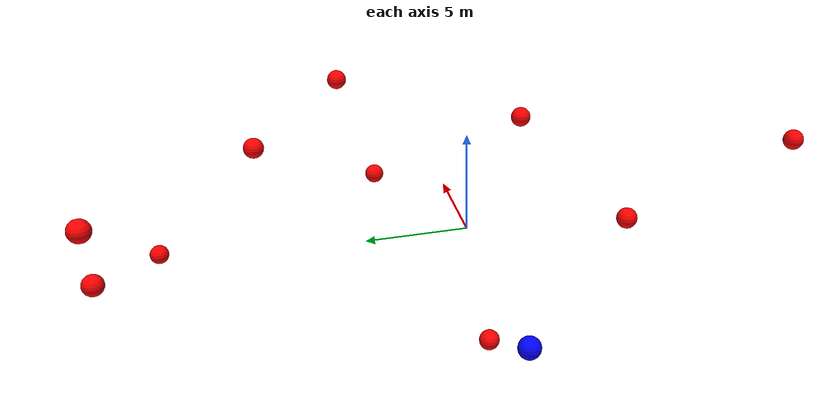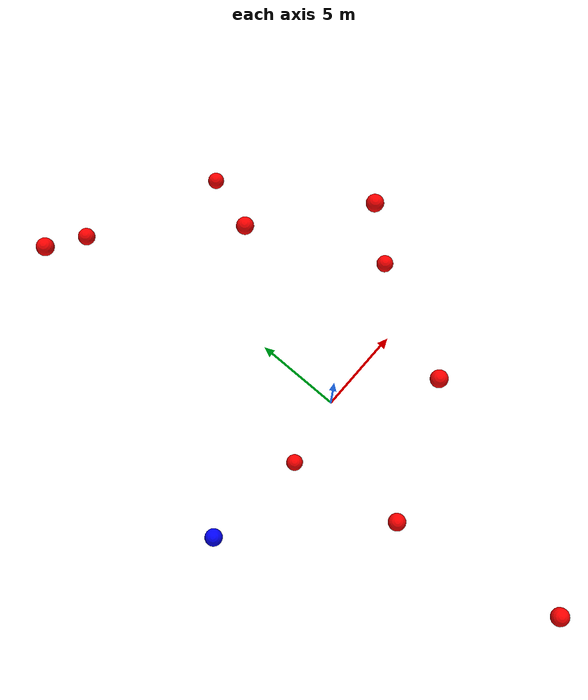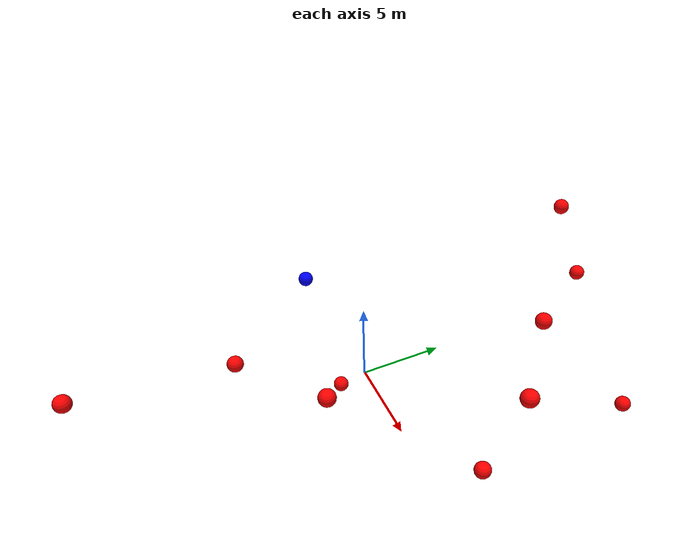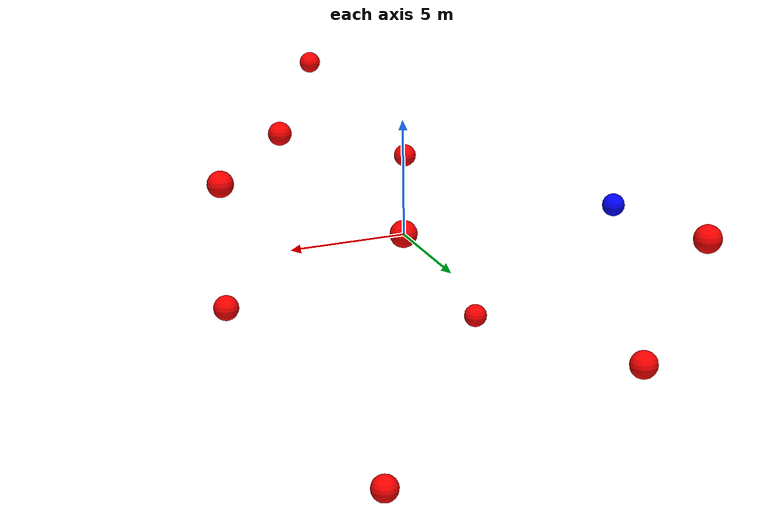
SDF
<?xml version="1.0" ?>
<sdf version="1.8">
    <world name="3d_world">
        <physics name="1ms" type="ode">
            <max_step_size>0.001</max_step_size>
            <real_time_factor>1.0</real_time_factor>
            <real_time_update_rate>1000.0</real_time_update_rate>
        </physics>
        <gravity>0 0 0</gravity>

        <plugin
            filename="gz-sim-physics-system"
            name="gz::sim::v8::systems::Physics">
        </plugin>
        <plugin
            filename="libignition-gazebo-user-commands-system.so"
            name="ignition::gazebo::systems::UserCommands">
        </plugin>
        <plugin
            filename="gz-sim-scene-broadcaster-system"
            name="gz::sim::systems::SceneBroadcaster">
        </plugin>
        <plugin
            filename="gz-sim-sensors-system"
            name="gz::sim::systems::Sensors">
            <render_engine>ogre2</render_engine>
        </plugin>

        <light type="directional" name="sun">
            <cast_shadows>true</cast_shadows>
            <pose>0 0 10 0 0 0</pose>
            <diffuse>0.8 0.8 0.8 1</diffuse>
            <specular>0.2 0.2 0.2 1</specular>
            <attenuation>
                <range>1000</range>
                <constant>0.9</constant>
                <linear>0.01</linear>
                <quadratic>0.001</quadratic>
            </attenuation>
            <direction>-0.5 0.1 -0.9</direction>
        </light>

        <!-- AGENTE -->
        <model name='agente' canonical_link='chassis'>
            <pose relative_to='world'>-10.0 0 0.0 0 0 0</pose>
            <link name='chassis'>
                <pose relative_to='__model__'>0.0 0 0.0 0 0 0</pose>
                <inertial>
                    <mass>1.14395</mass>
                    <inertia>
                        <ixx>0.095329</ixx>
                        <ixy>0</ixy>
                        <ixz>0</ixz>
                        <iyy>0.381317</iyy>
                        <iyz>0</iyz>
                        <izz>0.476646</izz>
                    </inertia>
                </inertial>
                <visual name='visual'>
                    <geometry>
                        <sphere>
                            <radius>0.5</radius>
                        </sphere>
                    </geometry>
                    <material>
                        <ambient>0.0 0.0 1.0 1</ambient>
                        <diffuse>0.0 0.0 1.0 1</diffuse>
                        <specular>0.0 0.0 1.0 1</specular>
                    </material>
                </visual>
                <collision name='collision'>
                    <geometry>
                        <sphere>
                            <radius>0.5</radius>
                        </sphere>
                    </geometry>
                </collision>
                <enable_gravity>false</enable_gravity>
            </link>

            <link name='lidar_link'>
                <pose relative_to='chassis'>0.0 0 0.1 0 0 0</pose>
                <inertial>
                    <mass>0.1</mass>
                    <inertia>
                        <ixx>0.000166667</ixx>
                        <iyy>0.000166667</iyy>
                        <izz>0.000166667</izz>
                    </inertia>
                </inertial>
                <collision name='collision'>
                    <geometry>
                        <cylinder>
                            <radius>0.05</radius>
                            <length>0.1</length>
                        </cylinder>
                    </geometry>
                </collision>
                <visual name='visual'>
                    <geometry>
                        <cylinder>
                            <radius>0.05</radius>
                            <length>0.1</length>
                        </cylinder>
                    </geometry>
                    <material>
                        <ambient>0.0 1.0 0.0 1</ambient>
                        <diffuse>0.0 1.0 0.0 1</diffuse>
                        <specular>0.0 1.0 0.0 1</specular>
                    </material>
                </visual>
                <sensor name="lidar" type="gpu_lidar">
                    <topic>scan</topic>
                    <update_rate>10</update_rate>
                    <lidar>
                        <scan>
                            <horizontal>
                                <samples>5000</samples>
                                <resolution>1</resolution>
                                <min_angle>-3.14159</min_angle>
                                <max_angle>3.14159</max_angle>
                            </horizontal>
                        </scan>
                        <range>
                            <min>0.1</min>
                            <max>10.0</max>
                            <resolution>0.01</resolution>
                        </range>
                    </lidar>
                    <visualize>true</visualize>
                    <always_on>true</always_on>
                    <update_rate>10</update_rate>
                    <pose_frame>lidar</pose_frame>
                </sensor>
                <enable_gravity>false</enable_gravity>
            </link>

            <joint name="lidar_joint" type="fixed">
                <parent>chassis</parent>
                <child>lidar_link</child>
            </joint>

            <plugin
                filename="ignition-gazebo-joint-state-publisher-system"
                name="ignition::gazebo::systems::JointStatePublisher">
            </plugin>
            <plugin
                filename="ignition-gazebo-odometry-publisher-system"
                name="ignition::gazebo::systems::OdometryPublisher">
                <dimensions>3</dimensions>
            </plugin>
            <plugin
                filename="ignition-gazebo-velocity-control-system"
                name="ignition::gazebo::systems::VelocityControl">
                <initial_linear>0.0 0 0</initial_linear>
                <initial_angular>0 0 0.0</initial_angular>
            </plugin>
            <plugin
                filename="libignition-gazebo-pose-publisher-system.so"
                name="ignition::gazebo::systems::PosePublisher">
                <topic>/agente/pose</topic>
                <frame_id>agente</frame_id>
                <update_rate>30</update_rate>
            </plugin>
        </model>

        <!-- OBSTACLE 1 -->
        <model name='obstacle_1' canonical_link='obstacle'>
            <static>false</static>
            <pose relative_to='world'>-2.91 -7.11 1.16 0 0 0</pose>
            <link name='obstacle'>
                <pose relative_to='__model__'>0.0 0 0.0 0 0 0</pose>
                <visual name='visual'>
                    <geometry>
                        <sphere>
                            <radius>0.50</radius>
                        </sphere>
                    </geometry>
                    <material>
                        <ambient>1.0 0.0 0.0 1</ambient>
                        <diffuse>1.0 0.0 0.0 1</diffuse>
                        <specular>1.0 0.0 0.0 1</specular>
                    </material>
                </visual>
                <collision name='collision'>
                    <geometry>
                        <sphere>
                            <radius>0.50</radius>
                        </sphere>
                    </geometry>
                </collision>
                <enable_gravity>false</enable_gravity>
            </link>

            <plugin
                filename="ignition-gazebo-velocity-control-system"
                name="ignition::gazebo::systems::VelocityControl">
                <initial_linear>1.29 1.21 -0.20</initial_linear>
                <initial_angular>0 0 0</initial_angular>
            </plugin>

            <plugin
                filename="ignition-gazebo-odometry-publisher-system"
                name="ignition::gazebo::systems::OdometryPublisher">
                <dimensions>3</dimensions>
            </plugin>
        </model>

        <!-- OBSTACLE 2 -->
        <model name='obstacle_2' canonical_link='obstacle'>
            <static>false</static>
            <pose relative_to='world'>3.87 9.69 3.73 0 0 0</pose>
            <link name='obstacle'>
                <pose relative_to='__model__'>0.0 0 0.0 0 0 0</pose>
                <visual name='visual'>
                    <geometry>
                        <sphere>
                            <radius>0.50</radius>
                        </sphere>
                    </geometry>
                    <material>
                        <ambient>1.0 0.0 0.0 1</ambient>
                        <diffuse>1.0 0.0 0.0 1</diffuse>
                        <specular>1.0 0.0 0.0 1</specular>
                    </material>
                </visual>
                <collision name='collision'>
                    <geometry>
                        <sphere>
                            <radius>0.50</radius>
                        </sphere>
                    </geometry>
                </collision>
                <enable_gravity>false</enable_gravity>
            </link>

            <plugin
                filename="ignition-gazebo-velocity-control-system"
                name="ignition::gazebo::systems::VelocityControl">
                <initial_linear>-1.26 -1.45 -0.56</initial_linear>
                <initial_angular>0 0 0</initial_angular>
            </plugin>

            <plugin
                filename="ignition-gazebo-odometry-publisher-system"
                name="ignition::gazebo::systems::OdometryPublisher">
                <dimensions>3</dimensions>
            </plugin>
        </model>

        <!-- OBSTACLE 3 -->
        <model name='obstacle_3' canonical_link='obstacle'>
            <static>false</static>
            <pose relative_to='world'>-4.37 16.79 4.70 0 0 0</pose>
            <link name='obstacle'>
                <pose relative_to='__model__'>0.0 0 0.0 0 0 0</pose>
                <visual name='visual'>
                    <geometry>
                        <sphere>
                            <radius>0.50</radius>
                        </sphere>
                    </geometry>
                    <material>
                        <ambient>1.0 0.0 0.0 1</ambient>
                        <diffuse>1.0 0.0 0.0 1</diffuse>
                        <specular>1.0 0.0 0.0 1</specular>
                    </material>
                </visual>
                <collision name='collision'>
                    <geometry>
                        <sphere>
                            <radius>0.50</radius>
                        </sphere>
                    </geometry>
                </collision>
                <enable_gravity>false</enable_gravity>
            </link>

            <plugin
                filename="ignition-gazebo-velocity-control-system"
                name="ignition::gazebo::systems::VelocityControl">
                <initial_linear>0.24 -1.91 -0.54</initial_linear>
                <initial_angular>0 0 0</initial_angular>
            </plugin>

            <plugin
                filename="ignition-gazebo-odometry-publisher-system"
                name="ignition::gazebo::systems::OdometryPublisher">
                <dimensions>3</dimensions>
            </plugin>
        </model>

        <!-- OBSTACLE 4 -->
        <model name='obstacle_4' canonical_link='obstacle'>
            <static>false</static>
            <pose relative_to='world'>-1.54 -16.39 3.59 0 0 0</pose>
            <link name='obstacle'>
                <pose relative_to='__model__'>0.0 0 0.0 0 0 0</pose>
                <visual name='visual'>
                    <geometry>
                        <sphere>
                            <radius>0.50</radius>
                        </sphere>
                    </geometry>
                    <material>
                        <ambient>1.0 0.0 0.0 1</ambient>
                        <diffuse>1.0 0.0 0.0 1</diffuse>
                        <specular>1.0 0.0 0.0 1</specular>
                    </material>
                </visual>
                <collision name='collision'>
                    <geometry>
                        <sphere>
                            <radius>0.50</radius>
                        </sphere>
                    </geometry>
                </collision>
                <enable_gravity>false</enable_gravity>
            </link>

            <plugin
                filename="ignition-gazebo-velocity-control-system"
                name="ignition::gazebo::systems::VelocityControl">
                <initial_linear>0.94 1.72 -0.38</initial_linear>
                <initial_angular>0 0 0</initial_angular>
            </plugin>

            <plugin
                filename="ignition-gazebo-odometry-publisher-system"
                name="ignition::gazebo::systems::OdometryPublisher">
                <dimensions>3</dimensions>
            </plugin>
        </model>

        <!-- OBSTACLE 5 -->
        <model name='obstacle_5' canonical_link='obstacle'>
            <static>false</static>
            <pose relative_to='world'>-1.86 17.17 0.66 0 0 0</pose>
            <link name='obstacle'>
                <pose relative_to='__model__'>0.0 0 0.0 0 0 0</pose>
                <visual name='visual'>
                    <geometry>
                        <sphere>
                            <radius>0.50</radius>
                        </sphere>
                    </geometry>
                    <material>
                        <ambient>1.0 0.0 0.0 1</ambient>
                        <diffuse>1.0 0.0 0.0 1</diffuse>
                        <specular>1.0 0.0 0.0 1</specular>
                    </material>
                </visual>
                <collision name='collision'>
                    <geometry>
                        <sphere>
                            <radius>0.50</radius>
                        </sphere>
                    </geometry>
                </collision>
                <enable_gravity>false</enable_gravity>
            </link>

            <plugin
                filename="ignition-gazebo-velocity-control-system"
                name="ignition::gazebo::systems::VelocityControl">
                <initial_linear>-0.10 -2.00 -0.08</initial_linear>
                <initial_angular>0 0 0</initial_angular>
            </plugin>

            <plugin
                filename="ignition-gazebo-odometry-publisher-system"
                name="ignition::gazebo::systems::OdometryPublisher">
                <dimensions>3</dimensions>
            </plugin>
        </model>

        <!-- OBSTACLE 6 -->
        <model name='obstacle_6' canonical_link='obstacle'>
            <static>false</static>
            <pose relative_to='world'>9.19 4.86 4.84 0 0 0</pose>
            <link name='obstacle'>
                <pose relative_to='__model__'>0.0 0 0.0 0 0 0</pose>
                <visual name='visual'>
                    <geometry>
                        <sphere>
                            <radius>0.50</radius>
                        </sphere>
                    </geometry>
                    <material>
                        <ambient>1.0 0.0 0.0 1</ambient>
                        <diffuse>1.0 0.0 0.0 1</diffuse>
                        <specular>1.0 0.0 0.0 1</specular>
                    </material>
                </visual>
                <collision name='collision'>
                    <geometry>
                        <sphere>
                            <radius>0.50</radius>
                        </sphere>
                    </geometry>
                </collision>
                <enable_gravity>false</enable_gravity>
            </link>

            <plugin
                filename="ignition-gazebo-velocity-control-system"
                name="ignition::gazebo::systems::VelocityControl">
                <initial_linear>-1.66 -0.79 -0.79</initial_linear>
                <initial_angular>0 0 0</initial_angular>
            </plugin>

            <plugin
                filename="ignition-gazebo-odometry-publisher-system"
                name="ignition::gazebo::systems::OdometryPublisher">
                <dimensions>3</dimensions>
            </plugin>
        </model>

        <!-- OBSTACLE 7 -->
        <model name='obstacle_7' canonical_link='obstacle'>
            <static>false</static>
            <pose relative_to='world'>-3.43 -0.23 -4.32 0 0 0</pose>
            <link name='obstacle'>
                <pose relative_to='__model__'>0.0 0 0.0 0 0 0</pose>
                <visual name='visual'>
                    <geometry>
                        <sphere>
                            <radius>0.50</radius>
                        </sphere>
                    </geometry>
                    <material>
                        <ambient>1.0 0.0 0.0 1</ambient>
                        <diffuse>1.0 0.0 0.0 1</diffuse>
                        <specular>1.0 0.0 0.0 1</specular>
                    </material>
                </visual>
                <collision name='collision'>
                    <geometry>
                        <sphere>
                            <radius>0.50</radius>
                        </sphere>
                    </geometry>
                </collision>
                <enable_gravity>false</enable_gravity>
            </link>

            <plugin
                filename="ignition-gazebo-velocity-control-system"
                name="ignition::gazebo::systems::VelocityControl">
                <initial_linear>1.46 0.04 0.68</initial_linear>
                <initial_angular>0 0 0</initial_angular>
            </plugin>

            <plugin
                filename="ignition-gazebo-odometry-publisher-system"
                name="ignition::gazebo::systems::OdometryPublisher">
                <dimensions>3</dimensions>
            </plugin>
        </model>

        <!-- OBSTACLE 8 -->
        <model name='obstacle_8' canonical_link='obstacle'>
            <static>false</static>
            <pose relative_to='world'>6.81 15.15 -3.19 0 0 0</pose>
            <link name='obstacle'>
                <pose relative_to='__model__'>0.0 0 0.0 0 0 0</pose>
                <visual name='visual'>
                    <geometry>
                        <sphere>
                            <radius>0.50</radius>
                        </sphere>
                    </geometry>
                    <material>
                        <ambient>1.0 0.0 0.0 1</ambient>
                        <diffuse>1.0 0.0 0.0 1</diffuse>
                        <specular>1.0 0.0 0.0 1</specular>
                    </material>
                </visual>
                <collision name='collision'>
                    <geometry>
                        <sphere>
                            <radius>0.50</radius>
                        </sphere>
                    </geometry>
                </collision>
                <enable_gravity>false</enable_gravity>
            </link>

            <plugin
                filename="ignition-gazebo-velocity-control-system"
                name="ignition::gazebo::systems::VelocityControl">
                <initial_linear>-1.12 -1.62 0.34</initial_linear>
                <initial_angular>0 0 0</initial_angular>
            </plugin>

            <plugin
                filename="ignition-gazebo-odometry-publisher-system"
                name="ignition::gazebo::systems::OdometryPublisher">
                <dimensions>3</dimensions>
            </plugin>
        </model>

        <!-- OBSTACLE 9 -->
        <model name='obstacle_9' canonical_link='obstacle'>
            <static>false</static>
            <pose relative_to='world'>4.07 -3.94 3.84 0 0 0</pose>
            <link name='obstacle'>
                <pose relative_to='__model__'>0.0 0 0.0 0 0 0</pose>
                <visual name='visual'>
                    <geometry>
                        <sphere>
                            <radius>0.50</radius>
                        </sphere>
                    </geometry>
                    <material>
                        <ambient>1.0 0.0 0.0 1</ambient>
                        <diffuse>1.0 0.0 0.0 1</diffuse>
                        <specular>1.0 0.0 0.0 1</specular>
                    </material>
                </visual>
                <collision name='collision'>
                    <geometry>
                        <sphere>
                            <radius>0.50</radius>
                        </sphere>
                    </geometry>
                </collision>
                <enable_gravity>false</enable_gravity>
            </link>

            <plugin
                filename="ignition-gazebo-velocity-control-system"
                name="ignition::gazebo::systems::VelocityControl">
                <initial_linear>0.22 0.64 -0.62</initial_linear>
                <initial_angular>0 0 0</initial_angular>
            </plugin>

            <plugin
                filename="ignition-gazebo-odometry-publisher-system"
                name="ignition::gazebo::systems::OdometryPublisher">
                <dimensions>3</dimensions>
            </plugin>
        </model>

        <!-- OBSTACLE 10 -->
        <model name='obstacle_10' canonical_link='obstacle'>
            <static>false</static>
            <pose relative_to='world'>8.71 3.14 -0.78 0 0 0</pose>
            <link name='obstacle'>
                <pose relative_to='__model__'>0.0 0 0.0 0 0 0</pose>
                <visual name='visual'>
                    <geometry>
                        <sphere>
                            <radius>0.50</radius>
                        </sphere>
                    </geometry>
                    <material>
                        <ambient>1.0 0.0 0.0 1</ambient>
                        <diffuse>1.0 0.0 0.0 1</diffuse>
                        <specular>1.0 0.0 0.0 1</specular>
                    </material>
                </visual>
                <collision name='collision'>
                    <geometry>
                        <sphere>
                            <radius>0.50</radius>
                        </sphere>
                    </geometry>
                </collision>
                <enable_gravity>false</enable_gravity>
            </link>

            <plugin
                filename="ignition-gazebo-velocity-control-system"
                name="ignition::gazebo::systems::VelocityControl">
                <initial_linear>-1.44 -0.66 0.17</initial_linear>
                <initial_angular>0 0 0</initial_angular>
            </plugin>

            <plugin
                filename="ignition-gazebo-odometry-publisher-system"
                name="ignition::gazebo::systems::OdometryPublisher">
                <dimensions>3</dimensions>
            </plugin>
        </model>

    </world>
</sdf>
